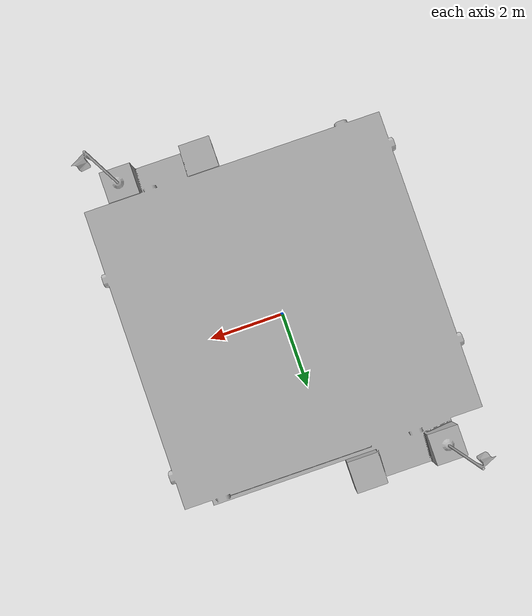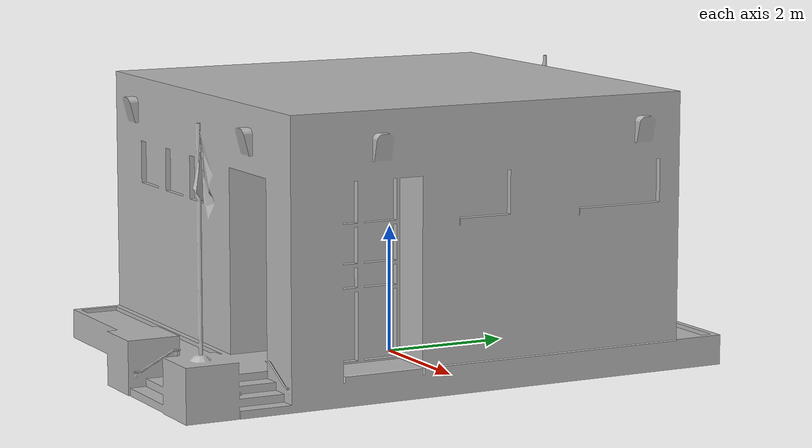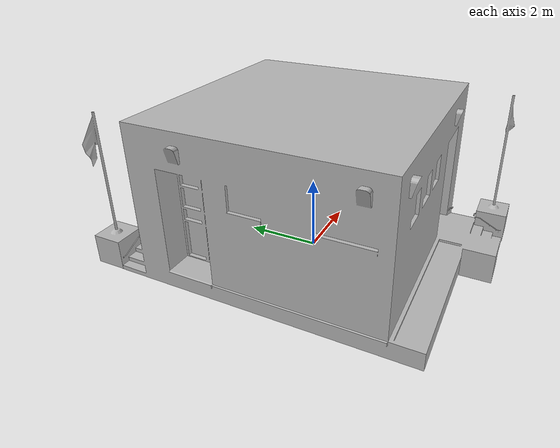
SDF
<?xml version="1.0" ?>
<sdf version="1.6">
  <model name="police_station">
    <static>true</static>
    <link name="link">
      <collision name="collision_main">
        <pose>0 0 4.289977323 0 0 0</pose>
        <geometry>
          <box>
            <size>6.03704276 6.03704276 4.579954646</size>
          </box>
        </geometry>
      </collision>
      <collision name="collision_landing">
        <pose>0 0 0.464086321 0 0 0</pose>
        <geometry>
          <box>
            <size>6.03704276 8.24458524 0.428172642</size>
          </box>
        </geometry>
      </collision>
      <visual name="visual">
        <geometry>
          <mesh>
            <uri>model://police_station/meshes/police_station.dae</uri>
	    <scale>0.5 0.5 0.5</scale>
          </mesh>
        </geometry>
      </visual>
    </link>
  </model>
</sdf>
